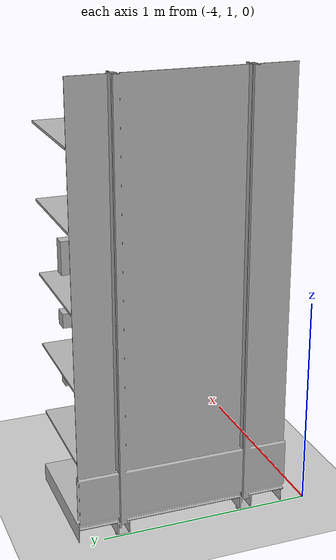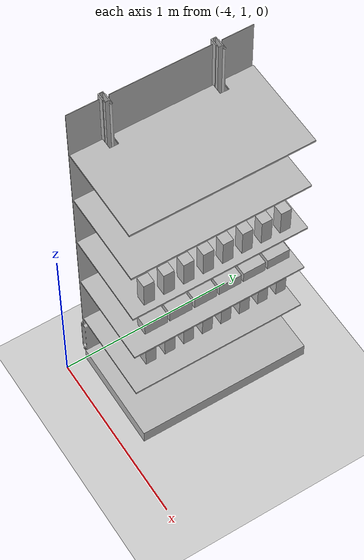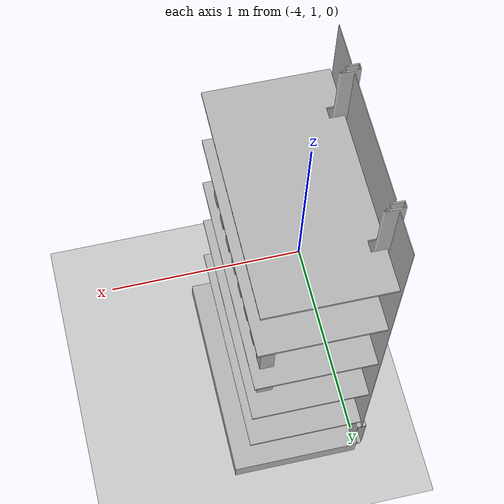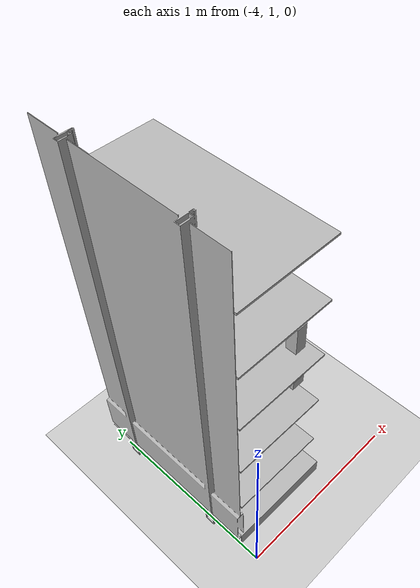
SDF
<sdf version="1.7">
 <world name="default">
  <model name="ground_plane">
   <static>1</static>
   <link name="link">
    <collision name="collision">
     <geometry><plane><normal>0 0 1</normal><size>100 100</size></plane></geometry>
     <surface>
      <contact><collide_bitmask>65535</collide_bitmask></contact>
      <friction><ode><mu>100</mu><mu2>50</mu2></ode></friction>
     </surface>
    </collision>
    <visual name="visual">
     <cast_shadows>0</cast_shadows>
     <geometry><plane><normal>0 0 1</normal><size>100 100</size></plane></geometry>
     <material>
      <script><uri>file://media/materials/scripts/gazebo.material</uri><name>Gazebo/Grey</name></script>
     </material>
    </visual>
   </link>
  </model>
  <model name="AH_shelf_filled_1">
   <static>1</static>
   <link name="link">
    <inertial>
     <mass>1</mass>
     <inertia><ixx>1</ixx><ixy>0</ixy><ixz>0</ixz><iyy>1</iyy><iyz>0</iyz><izz>1</izz></inertia>
    </inertial>
    <visual name="visual">
     <geometry><mesh><uri>model://AH_shelf/AH_shelf.dae</uri><scale>1 1 1</scale></mesh></geometry>
    </visual>
    <collision name="collision">
     <geometry><mesh><uri>model://AH_shelf/AH_shelf.dae</uri><scale>1 1 1</scale></mesh></geometry>
     <surface>
      <friction>
       <ode><mu>1</mu><mu2>1</mu2><fdir1>0 0 0</fdir1><slip1>0</slip1><slip2>0</slip2></ode>
       <torsional>
        <coefficient>1</coefficient>
        <patch_radius>0</patch_radius>
        <surface_radius>0</surface_radius>
        <use_patch_radius>1</use_patch_radius>
        <ode><slip>0</slip></ode>
       </torsional>
      </friction>
      <bounce><restitution_coefficient>0</restitution_coefficient><threshold>1e+06</threshold></bounce>
      <contact>
       <collide_without_contact>0</collide_without_contact>
       <collide_without_contact_bitmask>1</collide_without_contact_bitmask>
       <collide_bitmask>1</collide_bitmask>
       <ode>
        <soft_cfm>0</soft_cfm>
        <soft_erp>0.2</soft_erp>
        <kp>1e+13</kp>
        <kd>1</kd>
        <max_vel>0.01</max_vel>
        <min_depth>0</min_depth>
       </ode>
       <bullet>
        <split_impulse>1</split_impulse>
        <split_impulse_penetration_threshold>-0.01</split_impulse_penetration_threshold>
        <soft_cfm>0</soft_cfm>
        <soft_erp>0.2</soft_erp>
        <kp>1e+13</kp>
        <kd>1</kd>
       </bullet>
      </contact>
     </surface>
    </collision>
   </link>
   <model name="board2">
    <pose>0 0.5 0.65 0 -0 0</pose>
    <static>0</static>
    <link name="AH_hagelslag_melk::link_0">
     <inertial>
      <mass>0.1</mass>
      <inertia><ixx>0.0014</ixx><ixy>0</ixy><ixz>0</ixz><iyy>0.0014</iyy><iyz>0</iyz><izz>0.0028</izz></inertia>
     </inertial>
     <pose>0.111111 0 0 0 -0 1.57</pose>
     <visual name="visual">
      <geometry>
       <mesh><uri>model://AH_hagelslag_melk/AH_hagelslag_melk/AH_hagelslag_melk.dae</uri><scale>1 1 1</scale></mesh>
      </geometry>
     </visual>
     <collision name="collision">
      <geometry>
       <mesh><uri>model://AH_hagelslag_melk/AH_hagelslag_melk/AH_hagelslag_melk.dae</uri><scale>1 1 1</scale></mesh>
      </geometry>
      <surface>
       <friction>
        <ode><mu>1</mu><mu2>1</mu2><fdir1>0 0 0</fdir1><slip1>0</slip1><slip2>0</slip2></ode>
        <torsional>
         <coefficient>1</coefficient>
         <patch_radius>0</patch_radius>
         <surface_radius>0</surface_radius>
         <use_patch_radius>1</use_patch_radius>
         <ode><slip>0</slip></ode>
        </torsional>
       </friction>
       <bounce><restitution_coefficient>0</restitution_coefficient><threshold>1e+06</threshold></bounce>
       <contact>
        <collide_without_contact>0</collide_without_contact>
        <collide_without_contact_bitmask>1</collide_without_contact_bitmask>
        <collide_bitmask>1</collide_bitmask>
        <ode>
         <soft_cfm>0</soft_cfm>
         <soft_erp>0.2</soft_erp>
         <kp>1e+13</kp>
         <kd>1</kd>
         <max_vel>0.01</max_vel>
         <min_depth>0</min_depth>
        </ode>
        <bullet>
         <split_impulse>1</split_impulse>
         <split_impulse_penetration_threshold>-0.01</split_impulse_penetration_threshold>
         <soft_cfm>0</soft_cfm>
         <soft_erp>0.2</soft_erp>
         <kp>1e+13</kp>
         <kd>1</kd>
        </bullet>
       </contact>
      </surface>
     </collision>
    </link>
    <static>0</static>
    <link name="AH_hagelslag_melk::link_0">
     <inertial>
      <mass>0.1</mass>
      <inertia><ixx>0.0014</ixx><ixy>0</ixy><ixz>0</ixz><iyy>0.0014</iyy><iyz>0</iyz><izz>0.0028</izz></inertia>
     </inertial>
     <pose>0.222222 0 0 0 -0 1.57</pose>
     <visual name="visual">
      <geometry>
       <mesh><uri>model://AH_hagelslag_melk/AH_hagelslag_melk/AH_hagelslag_melk.dae</uri><scale>1 1 1</scale></mesh>
      </geometry>
     </visual>
     <collision name="collision">
      <geometry>
       <mesh><uri>model://AH_hagelslag_melk/AH_hagelslag_melk/AH_hagelslag_melk.dae</uri><scale>1 1 1</scale></mesh>
      </geometry>
      <surface>
       <friction>
        <ode><mu>1</mu><mu2>1</mu2><fdir1>0 0 0</fdir1><slip1>0</slip1><slip2>0</slip2></ode>
        <torsional>
         <coefficient>1</coefficient>
         <patch_radius>0</patch_radius>
         <surface_radius>0</surface_radius>
         <use_patch_radius>1</use_patch_radius>
         <ode><slip>0</slip></ode>
        </torsional>
       </friction>
       <bounce><restitution_coefficient>0</restitution_coefficient><threshold>1e+06</threshold></bounce>
       <contact>
        <collide_without_contact>0</collide_without_contact>
        <collide_without_contact_bitmask>1</collide_without_contact_bitmask>
        <collide_bitmask>1</collide_bitmask>
        <ode>
         <soft_cfm>0</soft_cfm>
         <soft_erp>0.2</soft_erp>
         <kp>1e+13</kp>
         <kd>1</kd>
         <max_vel>0.01</max_vel>
         <min_depth>0</min_depth>
        </ode>
        <bullet>
         <split_impulse>1</split_impulse>
         <split_impulse_penetration_threshold>-0.01</split_impulse_penetration_threshold>
         <soft_cfm>0</soft_cfm>
         <soft_erp>0.2</soft_erp>
         <kp>1e+13</kp>
         <kd>1</kd>
        </bullet>
       </contact>
      </surface>
     </collision>
    </link>
    <static>0</static>
    <link name="AH_hagelslag_melk::link_0">
     <inertial>
      <mass>0.1</mass>
      <inertia><ixx>0.0014</ixx><ixy>0</ixy><ixz>0</ixz><iyy>0.0014</iyy><iyz>0</iyz><izz>0.0028</izz></inertia>
     </inertial>
     <pose>0.333333 0 0 0 -0 1.57</pose>
     <visual name="visual">
      <geometry>
       <mesh><uri>model://AH_hagelslag_melk/AH_hagelslag_melk/AH_hagelslag_melk.dae</uri><scale>1 1 1</scale></mesh>
      </geometry>
     </visual>
     <collision name="collision">
      <geometry>
       <mesh><uri>model://AH_hagelslag_melk/AH_hagelslag_melk/AH_hagelslag_melk.dae</uri><scale>1 1 1</scale></mesh>
      </geometry>
      <surface>
       <friction>
        <ode><mu>1</mu><mu2>1</mu2><fdir1>0 0 0</fdir1><slip1>0</slip1><slip2>0</slip2></ode>
        <torsional>
         <coefficient>1</coefficient>
         <patch_radius>0</patch_radius>
         <surface_radius>0</surface_radius>
         <use_patch_radius>1</use_patch_radius>
         <ode><slip>0</slip></ode>
        </torsional>
       </friction>
       <bounce><restitution_coefficient>0</restitution_coefficient><threshold>1e+06</threshold></bounce>
       <contact>
        <collide_without_contact>0</collide_without_contact>
        <collide_without_contact_bitmask>1</collide_without_contact_bitmask>
        <collide_bitmask>1</collide_bitmask>
        <ode>
         <soft_cfm>0</soft_cfm>
         <soft_erp>0.2</soft_erp>
         <kp>1e+13</kp>
         <kd>1</kd>
         <max_vel>0.01</max_vel>
         <min_depth>0</min_depth>
        </ode>
        <bullet>
         <split_impulse>1</split_impulse>
         <split_impulse_penetration_threshold>-0.01</split_impulse_penetration_threshold>
         <soft_cfm>0</soft_cfm>
         <soft_erp>0.2</soft_erp>
         <kp>1e+13</kp>
         <kd>1</kd>
        </bullet>
       </contact>
      </surface>
     </collision>
    </link>
    <static>0</static>
    <link name="AH_hagelslag_melk::link_0">
     <inertial>
      <mass>0.1</mass>
      <inertia><ixx>0.0014</ixx><ixy>0</ixy><ixz>0</ixz><iyy>0.0014</iyy><iyz>0</iyz><izz>0.0028</izz></inertia>
     </inertial>
     <pose>0.444444 0 0 0 -0 1.57</pose>
     <visual name="visual">
      <geometry>
       <mesh><uri>model://AH_hagelslag_melk/AH_hagelslag_melk/AH_hagelslag_melk.dae</uri><scale>1 1 1</scale></mesh>
      </geometry>
     </visual>
     <collision name="collision">
      <geometry>
       <mesh><uri>model://AH_hagelslag_melk/AH_hagelslag_melk/AH_hagelslag_melk.dae</uri><scale>1 1 1</scale></mesh>
      </geometry>
      <surface>
       <friction>
        <ode><mu>1</mu><mu2>1</mu2><fdir1>0 0 0</fdir1><slip1>0</slip1><slip2>0</slip2></ode>
        <torsional>
         <coefficient>1</coefficient>
         <patch_radius>0</patch_radius>
         <surface_radius>0</surface_radius>
         <use_patch_radius>1</use_patch_radius>
         <ode><slip>0</slip></ode>
        </torsional>
       </friction>
       <bounce><restitution_coefficient>0</restitution_coefficient><threshold>1e+06</threshold></bounce>
       <contact>
        <collide_without_contact>0</collide_without_contact>
        <collide_without_contact_bitmask>1</collide_without_contact_bitmask>
        <collide_bitmask>1</collide_bitmask>
        <ode>
         <soft_cfm>0</soft_cfm>
         <soft_erp>0.2</soft_erp>
         <kp>1e+13</kp>
         <kd>1</kd>
         <max_vel>0.01</max_vel>
         <min_depth>0</min_depth>
        </ode>
        <bullet>
         <split_impulse>1</split_impulse>
         <split_impulse_penetration_threshold>-0.01</split_impulse_penetration_threshold>
         <soft_cfm>0</soft_cfm>
         <soft_erp>0.2</soft_erp>
         <kp>1e+13</kp>
         <kd>1</kd>
        </bullet>
       </contact>
      </surface>
     </collision>
    </link>
    <static>0</static>
    <link name="AH_hagelslag_melk::link_0">
     <inertial>
      <mass>0.1</mass>
      <inertia><ixx>0.0014</ixx><ixy>0</ixy><ixz>0</ixz><iyy>0.0014</iyy><iyz>0</iyz><izz>0.0028</izz></inertia>
     </inertial>
     <pose>0.555556 0 0 0 -0 1.57</pose>
     <visual name="visual">
      <geometry>
       <mesh><uri>model://AH_hagelslag_melk/AH_hagelslag_melk/AH_hagelslag_melk.dae</uri><scale>1 1 1</scale></mesh>
      </geometry>
     </visual>
     <collision name="collision">
      <geometry>
       <mesh><uri>model://AH_hagelslag_melk/AH_hagelslag_melk/AH_hagelslag_melk.dae</uri><scale>1 1 1</scale></mesh>
      </geometry>
      <surface>
       <friction>
        <ode><mu>1</mu><mu2>1</mu2><fdir1>0 0 0</fdir1><slip1>0</slip1><slip2>0</slip2></ode>
        <torsional>
         <coefficient>1</coefficient>
         <patch_radius>0</patch_radius>
         <surface_radius>0</surface_radius>
         <use_patch_radius>1</use_patch_radius>
         <ode><slip>0</slip></ode>
        </torsional>
       </friction>
       <bounce><restitution_coefficient>0</restitution_coefficient><threshold>1e+06</threshold></bounce>
       <contact>
        <collide_without_contact>0</collide_without_contact>
        <collide_without_contact_bitmask>1</collide_without_contact_bitmask>
        <collide_bitmask>1</collide_bitmask>
        <ode>
         <soft_cfm>0</soft_cfm>
         <soft_erp>0.2</soft_erp>
         <kp>1e+13</kp>
         <kd>1</kd>
         <max_vel>0.01</max_vel>
         <min_depth>0</min_depth>
        </ode>
        <bullet>
         <split_impulse>1</split_impulse>
         <split_impulse_penetration_threshold>-0.01</split_impulse_penetration_threshold>
         <soft_cfm>0</soft_cfm>
         <soft_erp>0.2</soft_erp>
         <kp>1e+13</kp>
         <kd>1</kd>
        </bullet>
       </contact>
      </surface>
     </collision>
    </link>
    <static>0</static>
    <link name="AH_hagelslag_melk::link_0">
     <inertial>
      <mass>0.1</mass>
      <inertia><ixx>0.0014</ixx><ixy>0</ixy><ixz>0</ixz><iyy>0.0014</iyy><iyz>0</iyz><izz>0.0028</izz></inertia>
     </inertial>
     <pose>0.666667 0 0 0 -0 1.57</pose>
     <visual name="visual">
      <geometry>
       <mesh><uri>model://AH_hagelslag_melk/AH_hagelslag_melk/AH_hagelslag_melk.dae</uri><scale>1 1 1</scale></mesh>
      </geometry>
     </visual>
     <collision name="collision">
      <geometry>
       <mesh><uri>model://AH_hagelslag_melk/AH_hagelslag_melk/AH_hagelslag_melk.dae</uri><scale>1 1 1</scale></mesh>
      </geometry>
      <surface>
       <friction>
        <ode><mu>1</mu><mu2>1</mu2><fdir1>0 0 0</fdir1><slip1>0</slip1><slip2>0</slip2></ode>
        <torsional>
         <coefficient>1</coefficient>
         <patch_radius>0</patch_radius>
         <surface_radius>0</surface_radius>
         <use_patch_radius>1</use_patch_radius>
         <ode><slip>0</slip></ode>
        </torsional>
       </friction>
       <bounce><restitution_coefficient>0</restitution_coefficient><threshold>1e+06</threshold></bounce>
       <contact>
        <collide_without_contact>0</collide_without_contact>
        <collide_without_contact_bitmask>1</collide_without_contact_bitmask>
        <collide_bitmask>1</collide_bitmask>
        <ode>
         <soft_cfm>0</soft_cfm>
         <soft_erp>0.2</soft_erp>
         <kp>1e+13</kp>
         <kd>1</kd>
         <max_vel>0.01</max_vel>
         <min_depth>0</min_depth>
        </ode>
        <bullet>
         <split_impulse>1</split_impulse>
         <split_impulse_penetration_threshold>-0.01</split_impulse_penetration_threshold>
         <soft_cfm>0</soft_cfm>
         <soft_erp>0.2</soft_erp>
         <kp>1e+13</kp>
         <kd>1</kd>
        </bullet>
       </contact>
      </surface>
     </collision>
    </link>
    <static>0</static>
    <link name="AH_hagelslag_melk::link_0">
     <inertial>
      <mass>0.1</mass>
      <inertia><ixx>0.0014</ixx><ixy>0</ixy><ixz>0</ixz><iyy>0.0014</iyy><iyz>0</iyz><izz>0.0028</izz></inertia>
     </inertial>
     <pose>0.777778 0 0 0 -0 1.57</pose>
     <visual name="visual">
      <geometry>
       <mesh><uri>model://AH_hagelslag_melk/AH_hagelslag_melk/AH_hagelslag_melk.dae</uri><scale>1 1 1</scale></mesh>
      </geometry>
     </visual>
     <collision name="collision">
      <geometry>
       <mesh><uri>model://AH_hagelslag_melk/AH_hagelslag_melk/AH_hagelslag_melk.dae</uri><scale>1 1 1</scale></mesh>
      </geometry>
      <surface>
       <friction>
        <ode><mu>1</mu><mu2>1</mu2><fdir1>0 0 0</fdir1><slip1>0</slip1><slip2>0</slip2></ode>
        <torsional>
         <coefficient>1</coefficient>
         <patch_radius>0</patch_radius>
         <surface_radius>0</surface_radius>
         <use_patch_radius>1</use_patch_radius>
         <ode><slip>0</slip></ode>
        </torsional>
       </friction>
       <bounce><restitution_coefficient>0</restitution_coefficient><threshold>1e+06</threshold></bounce>
       <contact>
        <collide_without_contact>0</collide_without_contact>
        <collide_without_contact_bitmask>1</collide_without_contact_bitmask>
        <collide_bitmask>1</collide_bitmask>
        <ode>
         <soft_cfm>0</soft_cfm>
         <soft_erp>0.2</soft_erp>
         <kp>1e+13</kp>
         <kd>1</kd>
         <max_vel>0.01</max_vel>
         <min_depth>0</min_depth>
        </ode>
        <bullet>
         <split_impulse>1</split_impulse>
         <split_impulse_penetration_threshold>-0.01</split_impulse_penetration_threshold>
         <soft_cfm>0</soft_cfm>
         <soft_erp>0.2</soft_erp>
         <kp>1e+13</kp>
         <kd>1</kd>
        </bullet>
       </contact>
      </surface>
     </collision>
    </link>
    <static>0</static>
    <link name="AH_hagelslag_melk::link_0">
     <inertial>
      <mass>0.1</mass>
      <inertia><ixx>0.0014</ixx><ixy>0</ixy><ixz>0</ixz><iyy>0.0014</iyy><iyz>0</iyz><izz>0.0028</izz></inertia>
     </inertial>
     <pose>0.888889 0 0 0 -0 1.57</pose>
     <visual name="visual">
      <geometry>
       <mesh><uri>model://AH_hagelslag_melk/AH_hagelslag_melk/AH_hagelslag_melk.dae</uri><scale>1 1 1</scale></mesh>
      </geometry>
     </visual>
     <collision name="collision">
      <geometry>
       <mesh><uri>model://AH_hagelslag_melk/AH_hagelslag_melk/AH_hagelslag_melk.dae</uri><scale>1 1 1</scale></mesh>
      </geometry>
      <surface>
       <friction>
        <ode><mu>1</mu><mu2>1</mu2><fdir1>0 0 0</fdir1><slip1>0</slip1><slip2>0</slip2></ode>
        <torsional>
         <coefficient>1</coefficient>
         <patch_radius>0</patch_radius>
         <surface_radius>0</surface_radius>
         <use_patch_radius>1</use_patch_radius>
         <ode><slip>0</slip></ode>
        </torsional>
       </friction>
       <bounce><restitution_coefficient>0</restitution_coefficient><threshold>1e+06</threshold></bounce>
       <contact>
        <collide_without_contact>0</collide_without_contact>
        <collide_without_contact_bitmask>1</collide_without_contact_bitmask>
        <collide_bitmask>1</collide_bitmask>
        <ode>
         <soft_cfm>0</soft_cfm>
         <soft_erp>0.2</soft_erp>
         <kp>1e+13</kp>
         <kd>1</kd>
         <max_vel>0.01</max_vel>
         <min_depth>0</min_depth>
        </ode>
        <bullet>
         <split_impulse>1</split_impulse>
         <split_impulse_penetration_threshold>-0.01</split_impulse_penetration_threshold>
         <soft_cfm>0</soft_cfm>
         <soft_erp>0.2</soft_erp>
         <kp>1e+13</kp>
         <kd>1</kd>
        </bullet>
       </contact>
      </surface>
     </collision>
    </link>
   </model>
   <model name="board3">
    <pose>0 0.5 0.9 0 -0 0</pose>
    <static>0</static>
    <link name="AH_thee_bosvruchten::link_0">
     <inertial>
      <mass>0.1</mass>
      <inertia><ixx>0.0014</ixx><ixy>0</ixy><ixz>0</ixz><iyy>0.0014</iyy><iyz>0</iyz><izz>0.0028</izz></inertia>
     </inertial>
     <pose>0.142857 0 0 0 -0 1.57</pose>
     <visual name="visual">
      <geometry>
       <mesh>
        <uri>model://AH_thee_bosvruchten/AH_thee_bosvruchten/AH_thee_bosvruchten.dae</uri>
        <scale>1 1 1</scale>
       </mesh>
      </geometry>
     </visual>
     <collision name="collision">
      <geometry>
       <mesh>
        <uri>model://AH_thee_bosvruchten/AH_thee_bosvruchten/AH_thee_bosvruchten.dae</uri>
        <scale>1 1 1</scale>
       </mesh>
      </geometry>
      <surface>
       <friction>
        <ode><mu>1</mu><mu2>1</mu2><fdir1>0 0 0</fdir1><slip1>0</slip1><slip2>0</slip2></ode>
        <torsional>
         <coefficient>1</coefficient>
         <patch_radius>0</patch_radius>
         <surface_radius>0</surface_radius>
         <use_patch_radius>1</use_patch_radius>
         <ode><slip>0</slip></ode>
        </torsional>
       </friction>
       <bounce><restitution_coefficient>0</restitution_coefficient><threshold>1e+06</threshold></bounce>
       <contact>
        <collide_without_contact>0</collide_without_contact>
        <collide_without_contact_bitmask>1</collide_without_contact_bitmask>
        <collide_bitmask>1</collide_bitmask>
        <ode>
         <soft_cfm>0</soft_cfm>
         <soft_erp>0.2</soft_erp>
         <kp>1e+13</kp>
         <kd>1</kd>
         <max_vel>0.01</max_vel>
         <min_depth>0</min_depth>
        </ode>
        <bullet>
         <split_impulse>1</split_impulse>
         <split_impulse_penetration_threshold>-0.01</split_impulse_penetration_threshold>
         <soft_cfm>0</soft_cfm>
         <soft_erp>0.2</soft_erp>
         <kp>1e+13</kp>
         <kd>1</kd>
        </bullet>
       </contact>
      </surface>
     </collision>
    </link>
    <static>0</static>
    <link name="AH_thee_bosvruchten::link_0">
     <inertial>
      <mass>0.1</mass>
      <inertia><ixx>0.0014</ixx><ixy>0</ixy><ixz>0</ixz><iyy>0.0014</iyy><iyz>0</iyz><izz>0.0028</izz></inertia>
     </inertial>
     <pose>0.285714 0 0 0 -0 1.57</pose>
     <visual name="visual">
      <geometry>
       <mesh>
        <uri>model://AH_thee_bosvruchten/AH_thee_bosvruchten/AH_thee_bosvruchten.dae</uri>
        <scale>1 1 1</scale>
       </mesh>
      </geometry>
     </visual>
     <collision name="collision">
      <geometry>
       <mesh>
        <uri>model://AH_thee_bosvruchten/AH_thee_bosvruchten/AH_thee_bosvruchten.dae</uri>
        <scale>1 1 1</scale>
       </mesh>
      </geometry>
      <surface>
       <friction>
        <ode><mu>1</mu><mu2>1</mu2><fdir1>0 0 0</fdir1><slip1>0</slip1><slip2>0</slip2></ode>
        <torsional>
         <coefficient>1</coefficient>
         <patch_radius>0</patch_radius>
         <surface_radius>0</surface_radius>
         <use_patch_radius>1</use_patch_radius>
         <ode><slip>0</slip></ode>
        </torsional>
       </friction>
       <bounce><restitution_coefficient>0</restitution_coefficient><threshold>1e+06</threshold></bounce>
       <contact>
        <collide_without_contact>0</collide_without_contact>
        <collide_without_contact_bitmask>1</collide_without_contact_bitmask>
        <collide_bitmask>1</collide_bitmask>
        <ode>
         <soft_cfm>0</soft_cfm>
         <soft_erp>0.2</soft_erp>
         <kp>1e+13</kp>
         <kd>1</kd>
         <max_vel>0.01</max_vel>
         <min_depth>0</min_depth>
        </ode>
        <bullet>
         <split_impulse>1</split_impulse>
         <split_impulse_penetration_threshold>-0.01</split_impulse_penetration_threshold>
         <soft_cfm>0</soft_cfm>
         <soft_erp>0.2</soft_erp>
         <kp>1e+13</kp>
         <kd>1</kd>
        </bullet>
       </contact>
      </surface>
     </collision>
    </link>
    <static>0</static>
    <link name="AH_thee_bosvruchten::link_0">
     <inertial>
      <mass>0.1</mass>
      <inertia><ixx>0.0014</ixx><ixy>0</ixy><ixz>0</ixz><iyy>0.0014</iyy><iyz>0</iyz><izz>0.0028</izz></inertia>
     </inertial>
     <pose>0.428571 0 0 0 -0 1.57</pose>
     <visual name="visual">
      <geometry>
       <mesh>
        <uri>model://AH_thee_bosvruchten/AH_thee_bosvruchten/AH_thee_bosvruchten.dae</uri>
        <scale>1 1 1</scale>
       </mesh>
      </geometry>
     </visual>
     <collision name="collision">
      <geometry>
       <mesh>
        <uri>model://AH_thee_bosvruchten/AH_thee_bosvruchten/AH_thee_bosvruchten.dae</uri>
        <scale>1 1 1</scale>
       </mesh>
      </geometry>
      <surface>
       <friction>
        <ode><mu>1</mu><mu2>1</mu2><fdir1>0 0 0</fdir1><slip1>0</slip1><slip2>0</slip2></ode>
        <torsional>
         <coefficient>1</coefficient>
         <patch_radius>0</patch_radius>
         <surface_radius>0</surface_radius>
         <use_patch_radius>1</use_patch_radius>
         <ode><slip>0</slip></ode>
        </torsional>
       </friction>
       <bounce><restitution_coefficient>0</restitution_coefficient><threshold>1e+06</threshold></bounce>
       <contact>
        <collide_without_contact>0</collide_without_contact>
        <collide_without_contact_bitmask>1</collide_without_contact_bitmask>
        <collide_bitmask>1</collide_bitmask>
        <ode>
         <soft_cfm>0</soft_cfm>
         <soft_erp>0.2</soft_erp>
         <kp>1e+13</kp>
         <kd>1</kd>
         <max_vel>0.01</max_vel>
         <min_depth>0</min_depth>
        </ode>
        <bullet>
         <split_impulse>1</split_impulse>
         <split_impulse_penetration_threshold>-0.01</split_impulse_penetration_threshold>
         <soft_cfm>0</soft_cfm>
         <soft_erp>0.2</soft_erp>
         <kp>1e+13</kp>
         <kd>1</kd>
        </bullet>
       </contact>
      </surface>
     </collision>
    </link>
    <static>0</static>
    <link name="AH_thee_bosvruchten::link_0">
     <inertial>
      <mass>0.1</mass>
      <inertia><ixx>0.0014</ixx><ixy>0</ixy><ixz>0</ixz><iyy>0.0014</iyy><iyz>0</iyz><izz>0.0028</izz></inertia>
     </inertial>
     <pose>0.571429 0 0 0 -0 1.57</pose>
     <visual name="visual">
      <geometry>
       <mesh>
        <uri>model://AH_thee_bosvruchten/AH_thee_bosvruchten/AH_thee_bosvruchten.dae</uri>
        <scale>1 1 1</scale>
       </mesh>
      </geometry>
     </visual>
     <collision name="collision">
      <geometry>
       <mesh>
        <uri>model://AH_thee_bosvruchten/AH_thee_bosvruchten/AH_thee_bosvruchten.dae</uri>
        <scale>1 1 1</scale>
       </mesh>
      </geometry>
      <surface>
       <friction>
        <ode><mu>1</mu><mu2>1</mu2><fdir1>0 0 0</fdir1><slip1>0</slip1><slip2>0</slip2></ode>
        <torsional>
         <coefficient>1</coefficient>
         <patch_radius>0</patch_radius>
         <surface_radius>0</surface_radius>
         <use_patch_radius>1</use_patch_radius>
         <ode><slip>0</slip></ode>
        </torsional>
       </friction>
       <bounce><restitution_coefficient>0</restitution_coefficient><threshold>1e+06</threshold></bounce>
       <contact>
        <collide_without_contact>0</collide_without_contact>
        <collide_without_contact_bitmask>1</collide_without_contact_bitmask>
        <collide_bitmask>1</collide_bitmask>
        <ode>
         <soft_cfm>0</soft_cfm>
         <soft_erp>0.2</soft_erp>
         <kp>1e+13</kp>
         <kd>1</kd>
         <max_vel>0.01</max_vel>
         <min_depth>0</min_depth>
        </ode>
        <bullet>
         <split_impulse>1</split_impulse>
         <split_impulse_penetration_threshold>-0.01</split_impulse_penetration_threshold>
         <soft_cfm>0</soft_cfm>
         <soft_erp>0.2</soft_erp>
         <kp>1e+13</kp>
         <kd>1</kd>
        </bullet>
       </contact>
      </surface>
     </collision>
    </link>
    <static>0</static>
    <link name="AH_thee_bosvruchten::link_0">
     <inertial>
      <mass>0.1</mass>
      <inertia><ixx>0.0014</ixx><ixy>0</ixy><ixz>0</ixz><iyy>0.0014</iyy><iyz>0</iyz><izz>0.0028</izz></inertia>
     </inertial>
     <pose>0.714286 0 0 0 -0 1.57</pose>
     <visual name="visual">
      <geometry>
       <mesh>
        <uri>model://AH_thee_bosvruchten/AH_thee_bosvruchten/AH_thee_bosvruchten.dae</uri>
        <scale>1 1 1</scale>
       </mesh>
      </geometry>
     </visual>
     <collision name="collision">
      <geometry>
       <mesh>
        <uri>model://AH_thee_bosvruchten/AH_thee_bosvruchten/AH_thee_bosvruchten.dae</uri>
        <scale>1 1 1</scale>
       </mesh>
      </geometry>
      <surface>
       <friction>
        <ode><mu>1</mu><mu2>1</mu2><fdir1>0 0 0</fdir1><slip1>0</slip1><slip2>0</slip2></ode>
        <torsional>
         <coefficient>1</coefficient>
         <patch_radius>0</patch_radius>
         <surface_radius>0</surface_radius>
         <use_patch_radius>1</use_patch_radius>
         <ode><slip>0</slip></ode>
        </torsional>
       </friction>
       <bounce><restitution_coefficient>0</restitution_coefficient><threshold>1e+06</threshold></bounce>
       <contact>
        <collide_without_contact>0</collide_without_contact>
        <collide_without_contact_bitmask>1</collide_without_contact_bitmask>
        <collide_bitmask>1</collide_bitmask>
        <ode>
         <soft_cfm>0</soft_cfm>
         <soft_erp>0.2</soft_erp>
         <kp>1e+13</kp>
         <kd>1</kd>
         <max_vel>0.01</max_vel>
         <min_depth>0</min_depth>
        </ode>
        <bullet>
         <split_impulse>1</split_impulse>
         <split_impulse_penetration_threshold>-0.01</split_impulse_penetration_threshold>
         <soft_cfm>0</soft_cfm>
         <soft_erp>0.2</soft_erp>
         <kp>1e+13</kp>
         <kd>1</kd>
        </bullet>
       </contact>
      </surface>
     </collision>
    </link>
    <static>0</static>
    <link name="AH_thee_bosvruchten::link_0">
     <inertial>
      <mass>0.1</mass>
      <inertia><ixx>0.0014</ixx><ixy>0</ixy><ixz>0</ixz><iyy>0.0014</iyy><iyz>0</iyz><izz>0.0028</izz></inertia>
     </inertial>
     <pose>0.857143 0 0 0 -0 1.57</pose>
     <visual name="visual">
      <geometry>
       <mesh>
        <uri>model://AH_thee_bosvruchten/AH_thee_bosvruchten/AH_thee_bosvruchten.dae</uri>
        <scale>1 1 1</scale>
       </mesh>
      </geometry>
     </visual>
     <collision name="collision">
      <geometry>
       <mesh>
        <uri>model://AH_thee_bosvruchten/AH_thee_bosvruchten/AH_thee_bosvruchten.dae</uri>
        <scale>1 1 1</scale>
       </mesh>
      </geometry>
      <surface>
       <friction>
        <ode><mu>1</mu><mu2>1</mu2><fdir1>0 0 0</fdir1><slip1>0</slip1><slip2>0</slip2></ode>
        <torsional>
         <coefficient>1</coefficient>
         <patch_radius>0</patch_radius>
         <surface_radius>0</surface_radius>
         <use_patch_radius>1</use_patch_radius>
         <ode><slip>0</slip></ode>
        </torsional>
       </friction>
       <bounce><restitution_coefficient>0</restitution_coefficient><threshold>1e+06</threshold></bounce>
       <contact>
        <collide_without_contact>0</collide_without_contact>
        <collide_without_contact_bitmask>1</collide_without_contact_bitmask>
        <collide_bitmask>1</collide_bitmask>
        <ode>
         <soft_cfm>0</soft_cfm>
         <soft_erp>0.2</soft_erp>
         <kp>1e+13</kp>
         <kd>1</kd>
         <max_vel>0.01</max_vel>
         <min_depth>0</min_depth>
        </ode>
        <bullet>
         <split_impulse>1</split_impulse>
         <split_impulse_penetration_threshold>-0.01</split_impulse_penetration_threshold>
         <soft_cfm>0</soft_cfm>
         <soft_erp>0.2</soft_erp>
         <kp>1e+13</kp>
         <kd>1</kd>
        </bullet>
       </contact>
      </surface>
     </collision>
    </link>
   </model>
   <model name="board4">
    <pose>0 0.5 1.2 0 -0 0</pose>
    <static>0</static>
    <link name="AH_hagelslag_puur::link_0">
     <inertial>
      <mass>0.1</mass>
      <inertia><ixx>0.0014</ixx><ixy>0</ixy><ixz>0</ixz><iyy>0.0014</iyy><iyz>0</iyz><izz>0.0028</izz></inertia>
     </inertial>
     <pose>0.111111 0 0 0 -0 1.57</pose>
     <visual name="visual">
      <geometry>
       <mesh><uri>model://AH_hagelslag_puur/AH_hagelslag_puur/AH_hagelslag_puur.dae</uri><scale>1 1 1</scale></mesh>
      </geometry>
     </visual>
     <collision name="collision">
      <geometry>
       <mesh><uri>model://AH_hagelslag_puur/AH_hagelslag_puur/AH_hagelslag_puur.dae</uri><scale>1 1 1</scale></mesh>
      </geometry>
      <surface>
       <friction>
        <ode><mu>1</mu><mu2>1</mu2><fdir1>0 0 0</fdir1><slip1>0</slip1><slip2>0</slip2></ode>
        <torsional>
         <coefficient>1</coefficient>
         <patch_radius>0</patch_radius>
         <surface_radius>0</surface_radius>
         <use_patch_radius>1</use_patch_radius>
         <ode><slip>0</slip></ode>
        </torsional>
       </friction>
       <bounce><restitution_coefficient>0</restitution_coefficient><threshold>1e+06</threshold></bounce>
       <contact>
        <collide_without_contact>0</collide_without_contact>
        <collide_without_contact_bitmask>1</collide_without_contact_bitmask>
        <collide_bitmask>1</collide_bitmask>
        <ode>
         <soft_cfm>0</soft_cfm>
         <soft_erp>0.2</soft_erp>
         <kp>1e+13</kp>
         <kd>1</kd>
         <max_vel>0.01</max_vel>
         <min_depth>0</min_depth>
        </ode>
        <bullet>
         <split_impulse>1</split_impulse>
         <split_impulse_penetration_threshold>-0.01</split_impulse_penetration_threshold>
         <soft_cfm>0</soft_cfm>
         <soft_erp>0.2</soft_erp>
         <kp>1e+13</kp>
         <kd>1</kd>
        </bullet>
       </contact>
      </surface>
     </collision>
    </link>
    <static>0</static>
    <link name="AH_hagelslag_puur::link_0">
     <inertial>
      <mass>0.1</mass>
      <inertia><ixx>0.0014</ixx><ixy>0</ixy><ixz>0</ixz><iyy>0.0014</iyy><iyz>0</iyz><izz>0.0028</izz></inertia>
     </inertial>
     <pose>0.222222 0 0 0 -0 1.57</pose>
     <visual name="visual">
      <geometry>
       <mesh><uri>model://AH_hagelslag_puur/AH_hagelslag_puur/AH_hagelslag_puur.dae</uri><scale>1 1 1</scale></mesh>
      </geometry>
     </visual>
     <collision name="collision">
      <geometry>
       <mesh><uri>model://AH_hagelslag_puur/AH_hagelslag_puur/AH_hagelslag_puur.dae</uri><scale>1 1 1</scale></mesh>
      </geometry>
      <surface>
       <friction>
        <ode><mu>1</mu><mu2>1</mu2><fdir1>0 0 0</fdir1><slip1>0</slip1><slip2>0</slip2></ode>
        <torsional>
         <coefficient>1</coefficient>
         <patch_radius>0</patch_radius>
         <surface_radius>0</surface_radius>
         <use_patch_radius>1</use_patch_radius>
         <ode><slip>0</slip></ode>
        </torsional>
       </friction>
       <bounce><restitution_coefficient>0</restitution_coefficient><threshold>1e+06</threshold></bounce>
       <contact>
        <collide_without_contact>0</collide_without_contact>
        <collide_without_contact_bitmask>1</collide_without_contact_bitmask>
        <collide_bitmask>1</collide_bitmask>
        <ode>
         <soft_cfm>0</soft_cfm>
         <soft_erp>0.2</soft_erp>
         <kp>1e+13</kp>
         <kd>1</kd>
         <max_vel>0.01</max_vel>
         <min_depth>0</min_depth>
        </ode>
        <bullet>
         <split_impulse>1</split_impulse>
         <split_impulse_penetration_threshold>-0.01</split_impulse_penetration_threshold>
         <soft_cfm>0</soft_cfm>
         <soft_erp>0.2</soft_erp>
         <kp>1e+13</kp>
         <kd>1</kd>
        </bullet>
       </contact>
      </surface>
     </collision>
    </link>
    <static>0</static>
    <link name="AH_hagelslag_puur::link_0">
     <inertial>
      <mass>0.1</mass>
      <inertia><ixx>0.0014</ixx><ixy>0</ixy><ixz>0</ixz><iyy>0.0014</iyy><iyz>0</iyz><izz>0.0028</izz></inertia>
     </inertial>
     <pose>0.333333 0 0 0 -0 1.57</pose>
     <visual name="visual">
      <geometry>
       <mesh><uri>model://AH_hagelslag_puur/AH_hagelslag_puur/AH_hagelslag_puur.dae</uri><scale>1 1 1</scale></mesh>
      </geometry>
     </visual>
     <collision name="collision">
      <geometry>
       <mesh><uri>model://AH_hagelslag_puur/AH_hagelslag_puur/AH_hagelslag_puur.dae</uri><scale>1 1 1</scale></mesh>
      </geometry>
      <surface>
       <friction>
        <ode><mu>1</mu><mu2>1</mu2><fdir1>0 0 0</fdir1><slip1>0</slip1><slip2>0</slip2></ode>
        <torsional>
         <coefficient>1</coefficient>
         <patch_radius>0</patch_radius>
         <surface_radius>0</surface_radius>
         <use_patch_radius>1</use_patch_radius>
         <ode><slip>0</slip></ode>
        </torsional>
       </friction>
       <bounce><restitution_coefficient>0</restitution_coefficient><threshold>1e+06</threshold></bounce>
       <contact>
        <collide_without_contact>0</collide_without_contact>
        <collide_without_contact_bitmask>1</collide_without_contact_bitmask>
        <collide_bitmask>1</collide_bitmask>
        <ode>
         <soft_cfm>0</soft_cfm>
         <soft_erp>0.2</soft_erp>
         <kp>1e+13</kp>
         <kd>1</kd>
         <max_vel>0.01</max_vel>
         <min_depth>0</min_depth>
        </ode>
        <bullet>
         <split_impulse>1</split_impulse>
         <split_impulse_penetration_threshold>-0.01</split_impulse_penetration_threshold>
         <soft_cfm>0</soft_cfm>
         <soft_erp>0.2</soft_erp>
         <kp>1e+13</kp>
         <kd>1</kd>
        </bullet>
       </contact>
      </surface>
     </collision>
    </link>
    <static>0</static>
    <link name="AH_hagelslag_puur::link_0">
     <inertial>
      <mass>0.1</mass>
      <inertia><ixx>0.0014</ixx><ixy>0</ixy><ixz>0</ixz><iyy>0.0014</iyy><iyz>0</iyz><izz>0.0028</izz></inertia>
     </inertial>
     <pose>0.444444 0 0 0 -0 1.57</pose>
     <visual name="visual">
      <geometry>
       <mesh><uri>model://AH_hagelslag_puur/AH_hagelslag_puur/AH_hagelslag_puur.dae</uri><scale>1 1 1</scale></mesh>
      </geometry>
     </visual>
     <collision name="collision">
      <geometry>
       <mesh><uri>model://AH_hagelslag_puur/AH_hagelslag_puur/AH_hagelslag_puur.dae</uri><scale>1 1 1</scale></mesh>
      </geometry>
      <surface>
       <friction>
        <ode><mu>1</mu><mu2>1</mu2><fdir1>0 0 0</fdir1><slip1>0</slip1><slip2>0</slip2></ode>
        <torsional>
         <coefficient>1</coefficient>
         <patch_radius>0</patch_radius>
         <surface_radius>0</surface_radius>
         <use_patch_radius>1</use_patch_radius>
         <ode><slip>0</slip></ode>
        </torsional>
       </friction>
       <bounce><restitution_coefficient>0</restitution_coefficient><threshold>1e+06</threshold></bounce>
       <contact>
        <collide_without_contact>0</collide_without_contact>
        <collide_without_contact_bitmask>1</collide_without_contact_bitmask>
        <collide_bitmask>1</collide_bitmask>
        <ode>
         <soft_cfm>0</soft_cfm>
         <soft_erp>0.2</soft_erp>
         <kp>1e+13</kp>
         <kd>1</kd>
         <max_vel>0.01</max_vel>
         <min_depth>0</min_depth>
        </ode>
        <bullet>
         <split_impulse>1</split_impulse>
         <split_impulse_penetration_threshold>-0.01</split_impulse_penetration_threshold>
         <soft_cfm>0</soft_cfm>
         <soft_erp>0.2</soft_erp>
         <kp>1e+13</kp>
         <kd>1</kd>
        </bullet>
       </contact>
      </surface>
     </collision>
    </link>
    <static>0</static>
    <link name="AH_hagelslag_puur::link_0">
     <inertial>
      <mass>0.1</mass>
      <inertia><ixx>0.0014</ixx><ixy>0</ixy><ixz>0</ixz><iyy>0.0014</iyy><iyz>0</iyz><izz>0.0028</izz></inertia>
     </inertial>
     <pose>0.555556 0 0 0 -0 1.57</pose>
     <visual name="visual">
      <geometry>
       <mesh><uri>model://AH_hagelslag_puur/AH_hagelslag_puur/AH_hagelslag_puur.dae</uri><scale>1 1 1</scale></mesh>
      </geometry>
     </visual>
     <collision name="collision">
      <geometry>
       <mesh><uri>model://AH_hagelslag_puur/AH_hagelslag_puur/AH_hagelslag_puur.dae</uri><scale>1 1 1</scale></mesh>
      </geometry>
      <surface>
       <friction>
        <ode><mu>1</mu><mu2>1</mu2><fdir1>0 0 0</fdir1><slip1>0</slip1><slip2>0</slip2></ode>
        <torsional>
         <coefficient>1</coefficient>
         <patch_radius>0</patch_radius>
         <surface_radius>0</surface_radius>
         <use_patch_radius>1</use_patch_radius>
         <ode><slip>0</slip></ode>
        </torsional>
       </friction>
       <bounce><restitution_coefficient>0</restitution_coefficient><threshold>1e+06</threshold></bounce>
       <contact>
        <collide_without_contact>0</collide_without_contact>
        <collide_without_contact_bitmask>1</collide_without_contact_bitmask>
        <collide_bitmask>1</collide_bitmask>
        <ode>
         <soft_cfm>0</soft_cfm>
         <soft_erp>0.2</soft_erp>
         <kp>1e+13</kp>
         <kd>1</kd>
         <max_vel>0.01</max_vel>
         <min_depth>0</min_depth>
        </ode>
        <bullet>
         <split_impulse>1</split_impulse>
         <split_impulse_penetration_threshold>-0.01</split_impulse_penetration_threshold>
         <soft_cfm>0</soft_cfm>
         <soft_erp>0.2</soft_erp>
         <kp>1e+13</kp>
         <kd>1</kd>
        </bullet>
       </contact>
      </surface>
     </collision>
    </link>
    <static>0</static>
    <link name="AH_hagelslag_puur::link_0">
     <inertial>
      <mass>0.1</mass>
      <inertia><ixx>0.0014</ixx><ixy>0</ixy><ixz>0</ixz><iyy>0.0014</iyy><iyz>0</iyz><izz>0.0028</izz></inertia>
     </inertial>
     <pose>0.666667 0 0 0 -0 1.57</pose>
     <visual name="visual">
      <geometry>
       <mesh><uri>model://AH_hagelslag_puur/AH_hagelslag_puur/AH_hagelslag_puur.dae</uri><scale>1 1 1</scale></mesh>
      </geometry>
     </visual>
     <collision name="collision">
      <geometry>
       <mesh><uri>model://AH_hagelslag_puur/AH_hagelslag_puur/AH_hagelslag_puur.dae</uri><scale>1 1 1</scale></mesh>
      </geometry>
      <surface>
       <friction>
        <ode><mu>1</mu><mu2>1</mu2><fdir1>0 0 0</fdir1><slip1>0</slip1><slip2>0</slip2></ode>
        <torsional>
         <coefficient>1</coefficient>
         <patch_radius>0</patch_radius>
         <surface_radius>0</surface_radius>
         <use_patch_radius>1</use_patch_radius>
         <ode><slip>0</slip></ode>
        </torsional>
       </friction>
       <bounce><restitution_coefficient>0</restitution_coefficient><threshold>1e+06</threshold></bounce>
       <contact>
        <collide_without_contact>0</collide_without_contact>
        <collide_without_contact_bitmask>1</collide_without_contact_bitmask>
        <collide_bitmask>1</collide_bitmask>
        <ode>
         <soft_cfm>0</soft_cfm>
         <soft_erp>0.2</soft_erp>
         <kp>1e+13</kp>
         <kd>1</kd>
         <max_vel>0.01</max_vel>
         <min_depth>0</min_depth>
        </ode>
        <bullet>
         <split_impulse>1</split_impulse>
         <split_impulse_penetration_threshold>-0.01</split_impulse_penetration_threshold>
         <soft_cfm>0</soft_cfm>
         <soft_erp>0.2</soft_erp>
         <kp>1e+13</kp>
         <kd>1</kd>
        </bullet>
       </contact>
      </surface>
     </collision>
    </link>
    <static>0</static>
    <link name="AH_hagelslag_puur::link_0">
     <inertial>
      <mass>0.1</mass>
      <inertia><ixx>0.0014</ixx><ixy>0</ixy><ixz>0</ixz><iyy>0.0014</iyy><iyz>0</iyz><izz>0.0028</izz></inertia>
     </inertial>
     <pose>0.777778 0 0 0 -0 1.57</pose>
     <visual name="visual">
      <geometry>
       <mesh><uri>model://AH_hagelslag_puur/AH_hagelslag_puur/AH_hagelslag_puur.dae</uri><scale>1 1 1</scale></mesh>
      </geometry>
     </visual>
     <collision name="collision">
      <geometry>
       <mesh><uri>model://AH_hagelslag_puur/AH_hagelslag_puur/AH_hagelslag_puur.dae</uri><scale>1 1 1</scale></mesh>
      </geometry>
      <surface>
       <friction>
        <ode><mu>1</mu><mu2>1</mu2><fdir1>0 0 0</fdir1><slip1>0</slip1><slip2>0</slip2></ode>
        <torsional>
         <coefficient>1</coefficient>
         <patch_radius>0</patch_radius>
         <surface_radius>0</surface_radius>
         <use_patch_radius>1</use_patch_radius>
         <ode><slip>0</slip></ode>
        </torsional>
       </friction>
       <bounce><restitution_coefficient>0</restitution_coefficient><threshold>1e+06</threshold></bounce>
       <contact>
        <collide_without_contact>0</collide_without_contact>
        <collide_without_contact_bitmask>1</collide_without_contact_bitmask>
        <collide_bitmask>1</collide_bitmask>
        <ode>
         <soft_cfm>0</soft_cfm>
         <soft_erp>0.2</soft_erp>
         <kp>1e+13</kp>
         <kd>1</kd>
         <max_vel>0.01</max_vel>
         <min_depth>0</min_depth>
        </ode>
        <bullet>
         <split_impulse>1</split_impulse>
         <split_impulse_penetration_threshold>-0.01</split_impulse_penetration_threshold>
         <soft_cfm>0</soft_cfm>
         <soft_erp>0.2</soft_erp>
         <kp>1e+13</kp>
         <kd>1</kd>
        </bullet>
       </contact>
      </surface>
     </collision>
    </link>
    <static>0</static>
    <link name="AH_hagelslag_puur::link_0">
     <inertial>
      <mass>0.1</mass>
      <inertia><ixx>0.0014</ixx><ixy>0</ixy><ixz>0</ixz><iyy>0.0014</iyy><iyz>0</iyz><izz>0.0028</izz></inertia>
     </inertial>
     <pose>0.888889 0 0 0 -0 1.57</pose>
     <visual name="visual">
      <geometry>
       <mesh><uri>model://AH_hagelslag_puur/AH_hagelslag_puur/AH_hagelslag_puur.dae</uri><scale>1 1 1</scale></mesh>
      </geometry>
     </visual>
     <collision name="collision">
      <geometry>
       <mesh><uri>model://AH_hagelslag_puur/AH_hagelslag_puur/AH_hagelslag_puur.dae</uri><scale>1 1 1</scale></mesh>
      </geometry>
      <surface>
       <friction>
        <ode><mu>1</mu><mu2>1</mu2><fdir1>0 0 0</fdir1><slip1>0</slip1><slip2>0</slip2></ode>
        <torsional>
         <coefficient>1</coefficient>
         <patch_radius>0</patch_radius>
         <surface_radius>0</surface_radius>
         <use_patch_radius>1</use_patch_radius>
         <ode><slip>0</slip></ode>
        </torsional>
       </friction>
       <bounce><restitution_coefficient>0</restitution_coefficient><threshold>1e+06</threshold></bounce>
       <contact>
        <collide_without_contact>0</collide_without_contact>
        <collide_without_contact_bitmask>1</collide_without_contact_bitmask>
        <collide_bitmask>1</collide_bitmask>
        <ode>
         <soft_cfm>0</soft_cfm>
         <soft_erp>0.2</soft_erp>
         <kp>1e+13</kp>
         <kd>1</kd>
         <max_vel>0.01</max_vel>
         <min_depth>0</min_depth>
        </ode>
        <bullet>
         <split_impulse>1</split_impulse>
         <split_impulse_penetration_threshold>-0.01</split_impulse_penetration_threshold>
         <soft_cfm>0</soft_cfm>
         <soft_erp>0.2</soft_erp>
         <kp>1e+13</kp>
         <kd>1</kd>
        </bullet>
       </contact>
      </surface>
     </collision>
    </link>
   </model>
   <pose>-4.02675 2.11392 0 0 0 -1.5708</pose>
  </model>
 </world>
</sdf>
